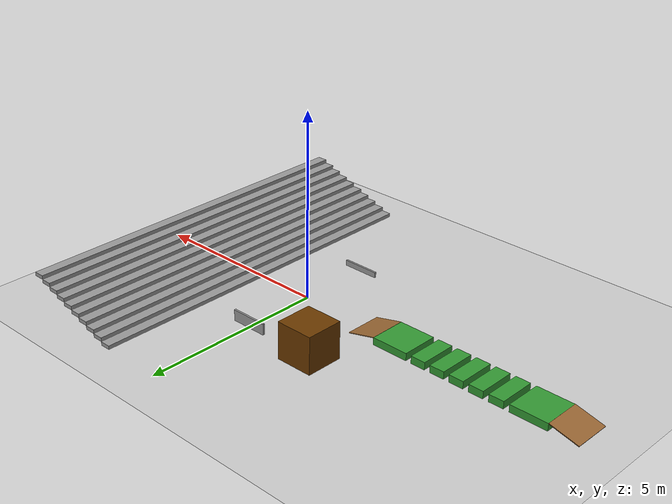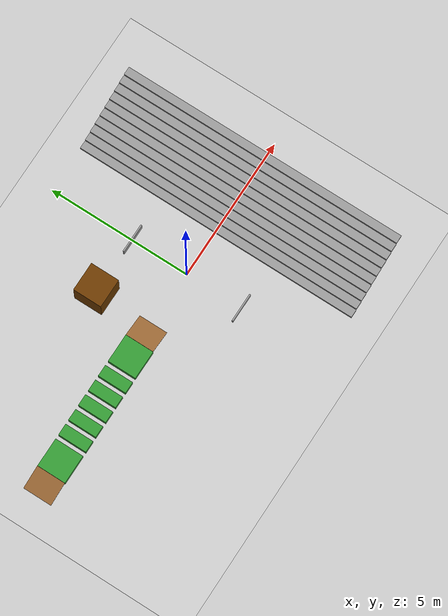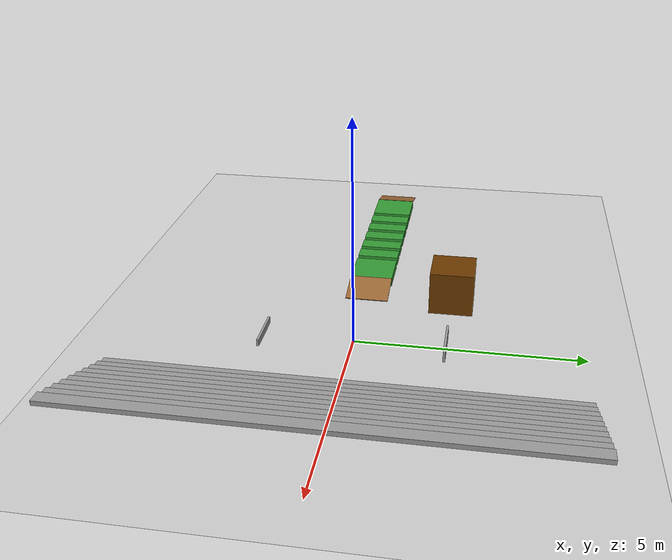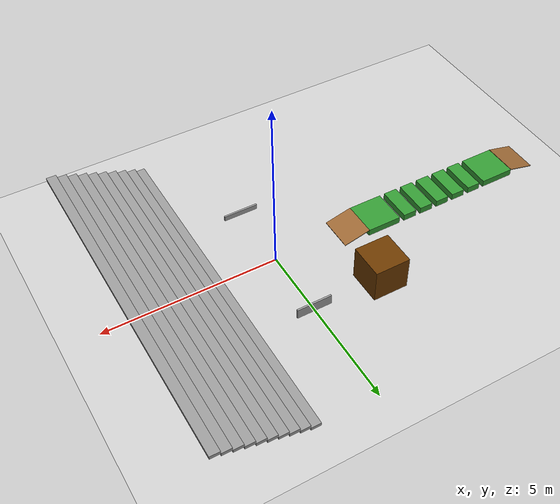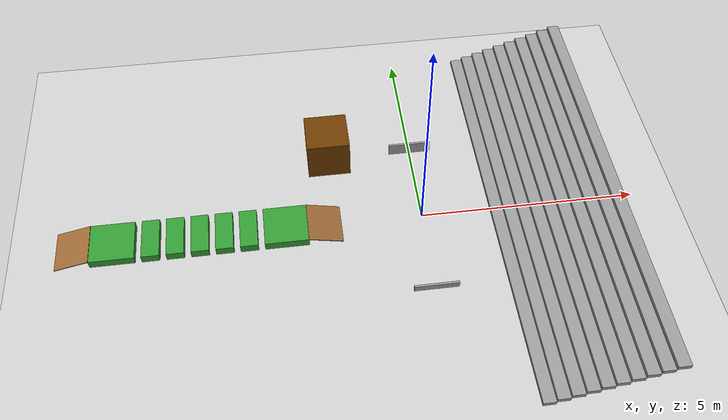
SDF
<?xml version="1.0"?>
<sdf version="1.5">
    <world name="default">

        <physics type="ode">
            <max_step_size>0.0005</max_step_size>
            <real_time_factor>1</real_time_factor>
            <real_time_update_rate>2000</real_time_update_rate>
            <gravity>0 0 -9.81</gravity>
            <ode>
                <solver>
                    <type>quick</type>
                    <iters>50</iters>
                    <sor>1.3</sor>
                </solver>
                <constraints>
                    <cfm>0.0</cfm>
                    <erp>0.2</erp>
                    <contact_max_correcting_vel>10.0</contact_max_correcting_vel>
                    <contact_surface_layer>0.001</contact_surface_layer>
                </constraints>
            </ode>
        </physics>

        <plugin name="gazebo_ros_state" filename="libgazebo_ros_state.so">
            <ros>
                <namespace>/gazebo</namespace>
            </ros>
            <update_rate>100.0</update_rate>
        </plugin>

        <scene>
            <sky>
                <clouds>
                    <speed>12</speed>
                </clouds>
            </sky>
        </scene>
        <!-- A global light source -->
        <include>
            <uri>model://sun</uri>
        </include>
        <!-- A ground plane -->
        <model name="ground_plane">
            <static>true</static>
            <link name="link">
                <collision name="collision">
                    <geometry>
                        <plane>
                            <normal>0 0 1</normal>
                            <size>100 100</size>
                        </plane>
                    </geometry>
                    <surface>
                        <friction>
                            <ode>
                                <mu>2.0</mu>      <!-- 静摩擦系数：增大摩擦 -->
                                <mu2>2.0</mu2>    <!-- 动摩擦系数：增大摩擦 -->
                                <fdir1>0 0 0</fdir1>
                                <slip1>0.0</slip1>
                                <slip2>0.0</slip2>
                            </ode>
                        </friction>
                        <contact>
                            <ode>
                                <kp>1000000.0</kp>  <!-- 地面刚度 -->
                                <kd>1.0</kd>        <!-- 地面阻尼 -->
                            </ode>
                        </contact>
                        <bounce>
                            <restitution_coefficient>0.0</restitution_coefficient>
                            <threshold>1e6</threshold>
                        </bounce>
                    </surface>
                </collision>
                <visual name="visual">
                    <geometry>
                        <plane>
                            <normal>0 0 1</normal>
                            <size>100 100</size>
                        </plane>
                    </geometry>
                    <material>
                        <script>
                            <uri>file://media/materials/scripts/gazebo.material</uri>
                            <name>Gazebo/Grey</name>
                        </script>
                    </material>
                </visual>
            </link>
        </model>
        <!-- environment blocks, obstacles or stairs -->
        <model name="static_environment">
            <static>true</static>
            <link name="static_box">
                <pose>-2 2 0.5 0 0 0</pose>
                <collision name="static_box_collision">
                    <geometry>
                        <box>
                            <size>1 1 1</size>
                        </box>
                    </geometry>
                    <surface>
                        <friction>
                            <ode>
                                <mu>2.0</mu>
                                <mu2>2.0</mu2>
                            </ode>
                        </friction>
                    </surface>
                </collision>
                <visual name="static_box_visual">
                    <geometry>
                        <box>
                            <size>1 1 1</size>
                        </box>
                    </geometry>
                    <material>
                        <ambient>0.2 0.2 0.2 1.0</ambient>
                        <diffuse>.421 0.225 0.0 1.0</diffuse>
                    </material>
                </visual>
            </link>

            <link name='wall'>
                <pose>0 2 0.15 0 0 0</pose>
                <collision name='wall_collision'>
                    <geometry>
                        <box>
                            <size>1.0 0.05 0.3</size>
                        </box>
                    </geometry>
                    <surface>
                        <friction>
                            <ode>
                                <mu>2.0</mu>
                                <mu2>2.0</mu2>
                            </ode>
                        </friction>
                    </surface>
                </collision>
                <visual name='wall_visual'>
                    <geometry>
                        <box>
                            <size>1.0 0.05 0.3</size>
                        </box>
                    </geometry>
                    <material>
                        <ambient>0.3 0.3 0.3 1.0</ambient>
                        <diffuse>0.6 0.6 0.6 1.0</diffuse>
                    </material>
                </visual>
            </link>

            <link name='wall_15cm'>
                <pose>0 -2 0.075 0 0 0</pose>
                <collision name='wall_15cm_collision'>
                    <geometry>
                        <box>
                            <size>1.0 0.05 0.15</size>
                        </box>
                    </geometry>
                    <surface>
                        <friction>
                            <ode>
                                <mu>2.0</mu>
                                <mu2>2.0</mu2>
                            </ode>
                        </friction>
                    </surface>
                </collision>
                <visual name='wall_15cm_visual'>
                    <geometry>
                        <box>
                            <size>1.0 0.05 0.15</size>
                        </box>
                    </geometry>
                    <material>
                        <ambient>0.3 0.3 0.3 1.0</ambient>
                        <diffuse>0.6 0.6 0.6 1.0</diffuse>
                    </material>
                </visual>
            </link>

            <link name='Stairs'>
                <pose>3 0 0 0 0 0</pose>
                <scale>1 1 1</scale>
                <visual name='Stairs_Visual_0'>
                    <pose>-1.26 -0 0.05 0 -0 1.5708</pose>
                    <geometry>
                        <box>
                            <size>10 0.28 0.10</size>
                        </box>
                    </geometry>
                    <material>
                        <script>
                            <uri>file://media/materials/scripts/gazebo.material</uri>
                            <name>Gazebo/Grey</name>
                        </script>
                        <ambient>1 1 1 1</ambient>
                    </material>
                    <meta>
                        <layer>0</layer>
                    </meta>
                </visual>
                <collision name='Stairs_Collision_0'>
                    <geometry>
                        <box>
                            <size>10 0.28 0.10</size>
                        </box>
                    </geometry>
                    <surface>
                        <friction>
                            <ode>
                                <mu>2.0</mu>
                                <mu2>2.0</mu2>
                            </ode>
                        </friction>
                    </surface>
                    <pose>-1.26 -0 0.05 0 -0 1.5708</pose>
                </collision>
                <visual name='Stairs_Visual_1'>
                    <pose>-0.98 -0 0.15 0 -0 1.5708</pose>
                    <geometry>
                        <box>
                            <size>10 0.28 0.10</size>
                        </box>
                    </geometry>
                    <material>
                        <script>
                            <uri>file://media/materials/scripts/gazebo.material</uri>
                            <name>Gazebo/Grey</name>
                        </script>
                        <ambient>1 1 1 1</ambient>
                    </material>
                    <meta>
                        <layer>0</layer>
                    </meta>
                </visual>
                <collision name='Stairs_Collision_1'>
                    <geometry>
                        <box>
                            <size>10 0.28 0.10</size>
                        </box>
                    </geometry>
                    <surface>
                        <friction>
                            <ode>
                                <mu>2.0</mu>
                                <mu2>2.0</mu2>
                            </ode>
                        </friction>
                    </surface>
                    <pose>-0.98 -0 0.15 0 -0 1.5708</pose>
                </collision>
                <visual name='Stairs_Visual_2'>
                    <pose>-0.7 -0 0.25 0 -0 1.5708</pose>
                    <geometry>
                        <box>
                            <size>10 0.28 0.10</size>
                        </box>
                    </geometry>
                    <material>
                        <script>
                            <uri>file://media/materials/scripts/gazebo.material</uri>
                            <name>Gazebo/Grey</name>
                        </script>
                        <ambient>1 1 1 1</ambient>
                    </material>
                    <meta>
                        <layer>0</layer>
                    </meta>
                </visual>
                <collision name='Stairs_Collision_2'>
                    <geometry>
                        <box>
                            <size>10 0.28 0.10</size>
                        </box>
                    </geometry>
                    <surface>
                        <friction>
                            <ode>
                                <mu>2.0</mu>
                                <mu2>2.0</mu2>
                            </ode>
                        </friction>
                    </surface>
                    <pose>-0.7 -0 0.25 0 -0 1.5708</pose>
                </collision>
                <visual name='Stairs_Visual_3'>
                    <pose>-0.42 -0 0.35 0 -0 1.5708</pose>
                    <geometry>
                        <box>
                            <size>10 0.28 0.10</size>
                        </box>
                    </geometry>
                    <material>
                        <script>
                            <uri>file://media/materials/scripts/gazebo.material</uri>
                            <name>Gazebo/Grey</name>
                        </script>
                        <ambient>1 1 1 1</ambient>
                    </material>
                    <meta>
                        <layer>0</layer>
                    </meta>
                </visual>
                <collision name='Stairs_Collision_3'>
                    <geometry>
                        <box>
                            <size>10 0.28 0.10</size>
                        </box>
                    </geometry>
                    <surface>
                        <friction>
                            <ode>
                                <mu>2.0</mu>
                                <mu2>2.0</mu2>
                            </ode>
                        </friction>
                    </surface>
                    <pose>-0.42 -0 0.35 0 -0 1.5708</pose>
                </collision>
                <visual name='Stairs_Visual_4'>
                    <pose>-0.14 -0 0.45 0 -0 1.5708</pose>
                    <geometry>
                        <box>
                            <size>10 0.28 0.10</size>
                        </box>
                    </geometry>
                    <material>
                        <script>
                            <uri>file://media/materials/scripts/gazebo.material</uri>
                            <name>Gazebo/Grey</name>
                        </script>
                        <ambient>1 1 1 1</ambient>
                    </material>
                    <meta>
                        <layer>0</layer>
                    </meta>
                </visual>
                <collision name='Stairs_Collision_4'>
                    <geometry>
                        <box>
                            <size>10 0.28 0.10</size>
                        </box>
                    </geometry>
                    <surface>
                        <friction>
                            <ode>
                                <mu>2.0</mu>
                                <mu2>2.0</mu2>
                            </ode>
                        </friction>
                    </surface>
                    <pose>-0.14 -0 0.45 0 -0 1.5708</pose>
                </collision>
                <visual name='Stairs_Visual_5'>
                    <pose>0.14 0 0.55 0 -0 1.5708</pose>
                    <geometry>
                        <box>
                            <size>10 0.28 0.10</size>
                        </box>
                    </geometry>
                    <material>
                        <script>
                            <uri>file://media/materials/scripts/gazebo.material</uri>
                            <name>Gazebo/Grey</name>
                        </script>
                        <ambient>1 1 1 1</ambient>
                    </material>
                    <meta>
                        <layer>0</layer>
                    </meta>
                </visual>
                <collision name='Stairs_Collision_5'>
                    <geometry>
                        <box>
                            <size>10 0.28 0.10</size>
                        </box>
                    </geometry>
                    <surface>
                        <friction>
                            <ode>
                                <mu>2.0</mu>
                                <mu2>2.0</mu2>
                            </ode>
                        </friction>
                    </surface>
                    <pose>0.14 0 0.55 0 -0 1.5708</pose>
                </collision>
                <visual name='Stairs_Visual_6'>
                    <pose>0.42 0 0.65 0 -0 1.5708</pose>
                    <geometry>
                        <box>
                            <size>10 0.28 0.10</size>
                        </box>
                    </geometry>
                    <material>
                        <script>
                            <uri>file://media/materials/scripts/gazebo.material</uri>
                            <name>Gazebo/Grey</name>
                        </script>
                        <ambient>1 1 1 1</ambient>
                    </material>
                    <meta>
                        <layer>0</layer>
                    </meta>
                </visual>
                <collision name='Stairs_Collision_6'>
                    <geometry>
                        <box>
                            <size>10 0.28 0.10</size>
                        </box>
                    </geometry>
                    <surface>
                        <friction>
                            <ode>
                                <mu>2.0</mu>
                                <mu2>2.0</mu2>
                            </ode>
                        </friction>
                    </surface>
                    <pose>0.42 0 0.65 0 -0 1.5708</pose>
                </collision>
                <visual name='Stairs_Visual_7'>
                    <pose>0.7 0 0.75 0 -0 1.5708</pose>
                    <geometry>
                        <box>
                            <size>10 0.28 0.10</size>
                        </box>
                    </geometry>
                    <material>
                        <script>
                            <uri>file://media/materials/scripts/gazebo.material</uri>
                            <name>Gazebo/Grey</name>
                        </script>
                        <ambient>1 1 1 1</ambient>
                    </material>
                    <meta>
                        <layer>0</layer>
                    </meta>
                </visual>
                <collision name='Stairs_Collision_7'>
                    <geometry>
                        <box>
                            <size>10 0.28 0.10</size>
                        </box>
                    </geometry>
                    <surface>
                        <friction>
                            <ode>
                                <mu>2.0</mu>
                                <mu2>2.0</mu2>
                            </ode>
                        </friction>
                    </surface>
                    <pose>0.7 0 0.75 0 -0 1.5708</pose>
                </collision>
                <visual name='Stairs_Visual_8'>
                    <pose>0.98 0 0.85 0 -0 1.5708</pose>
                    <geometry>
                        <box>
                            <size>10 0.28 0.10</size>
                        </box>
                    </geometry>
                    <material>
                        <script>
                            <uri>file://media/materials/scripts/gazebo.material</uri>
                            <name>Gazebo/Grey</name>
                        </script>
                        <ambient>1 1 1 1</ambient>
                    </material>
                    <meta>
                        <layer>0</layer>
                    </meta>
                </visual>
                <collision name='Stairs_Collision_8'>
                    <geometry>
                        <box>
                            <size>10 0.28 0.10</size>
                        </box>
                    </geometry>
                    <surface>
                        <friction>
                            <ode>
                                <mu>2.0</mu>
                                <mu2>2.0</mu2>
                            </ode>
                        </friction>
                    </surface>
                    <pose>0.98 0 0.85 0 -0 1.5708</pose>
                </collision>
                <visual name='Stairs_Visual_9'>
                    <pose>1.26 0 0.95 0 -0 1.5708</pose>
                    <geometry>
                        <box>
                            <size>10 0.28 0.10</size>
                        </box>
                    </geometry>
                    <material>
                        <script>
                            <uri>file://media/materials/scripts/gazebo.material</uri>
                            <name>Gazebo/Grey</name>
                        </script>
                        <ambient>1 1 1 1</ambient>
                    </material>
                    <meta>
                        <layer>0</layer>
                    </meta>
                </visual>
                <collision name='Stairs_Collision_9'>
                    <geometry>
                        <box>
                            <size>10 0.28 0.10</size>
                        </box>
                    </geometry>
                    <surface>
                        <friction>
                            <ode>
                                <mu>2.0</mu>
                                <mu2>2.0</mu2>
                            </ode>
                        </friction>
                    </surface>
                    <pose>1.26 0 0.95 0 -0 1.5708</pose>
                </collision>
            </link>
        </model>

        <!-- 小平台 ×7: 高200mm, 长1000mm(Y), 宽400mm(X), 边到边间距150mm -->
        <model name="small_platform_0">
            <static>true</static>
            <link name="platform_link_0">
                <pose>-3.15 0 0.1 0 0 1.5708</pose>
                <collision name="platform_collision_0">
                    <geometry><box><size>1.0 1.0 0.2</size></box></geometry>
                    <surface><friction><ode><mu>2.0</mu><mu2>2.0</mu2></ode></friction></surface>
                </collision>
                <visual name="platform_visual_0">
                    <geometry><box><size>1.0 1.0 0.2</size></box></geometry>
                    <material><ambient>0.3 0.3 0.3 1.0</ambient><diffuse>0.2 0.6 0.2 1.0</diffuse></material>
                </visual>
            </link>
        </model>
        <model name="small_platform_1">
            <static>true</static>
            <link name="platform_link_1">
                <pose>-4.00 0 0.1 0 0 1.5708</pose>
                <collision name="platform_collision_1">
                    <geometry><box><size>1.0 0.4 0.2</size></box></geometry>
                    <surface><friction><ode><mu>2.0</mu><mu2>2.0</mu2></ode></friction></surface>
                </collision>
                <visual name="platform_visual_1">
                    <geometry><box><size>1.0 0.4 0.2</size></box></geometry>
                    <material><ambient>0.3 0.3 0.3 1.0</ambient><diffuse>0.2 0.6 0.2 1.0</diffuse></material>
                </visual>
            </link>
        </model>
        <model name="small_platform_2">
            <static>true</static>
            <link name="platform_link_2">
                <pose>-4.55 0 0.1 0 0 1.5708</pose>
                <collision name="platform_collision_2">
                    <geometry><box><size>1.0 0.4 0.2</size></box></geometry>
                    <surface><friction><ode><mu>2.0</mu><mu2>2.0</mu2></ode></friction></surface>
                </collision>
                <visual name="platform_visual_2">
                    <geometry><box><size>1.0 0.4 0.2</size></box></geometry>
                    <material><ambient>0.3 0.3 0.3 1.0</ambient><diffuse>0.2 0.6 0.2 1.0</diffuse></material>
                </visual>
            </link>
        </model>
        <model name="small_platform_3">
            <static>true</static>
            <link name="platform_link_3">
                <pose>-5.10 0 0.1 0 0 1.5708</pose>
                <collision name="platform_collision_3">
                    <geometry><box><size>1.0 0.4 0.2</size></box></geometry>
                    <surface><friction><ode><mu>2.0</mu><mu2>2.0</mu2></ode></friction></surface>
                </collision>
                <visual name="platform_visual_3">
                    <geometry><box><size>1.0 0.4 0.2</size></box></geometry>
                    <material><ambient>0.3 0.3 0.3 1.0</ambient><diffuse>0.2 0.6 0.2 1.0</diffuse></material>
                </visual>
            </link>
        </model>
        <model name="small_platform_4">
            <static>true</static>
            <link name="platform_link_4">
                <pose>-5.65 0 0.1 0 0 1.5708</pose>
                <collision name="platform_collision_4">
                    <geometry><box><size>1.0 0.4 0.2</size></box></geometry>
                    <surface><friction><ode><mu>2.0</mu><mu2>2.0</mu2></ode></friction></surface>
                </collision>
                <visual name="platform_visual_4">
                    <geometry><box><size>1.0 0.4 0.2</size></box></geometry>
                    <material><ambient>0.3 0.3 0.3 1.0</ambient><diffuse>0.2 0.6 0.2 1.0</diffuse></material>
                </visual>
            </link>
        </model>
        <model name="small_platform_5">
            <static>true</static>
            <link name="platform_link_5">
                <pose>-6.20 0 0.1 0 0 1.5708</pose>
                <collision name="platform_collision_5">
                    <geometry><box><size>1.0 0.4 0.2</size></box></geometry>
                    <surface><friction><ode><mu>2.0</mu><mu2>2.0</mu2></ode></friction></surface>
                </collision>
                <visual name="platform_visual_5">
                    <geometry><box><size>1.0 0.4 0.2</size></box></geometry>
                    <material><ambient>0.3 0.3 0.3 1.0</ambient><diffuse>0.2 0.6 0.2 1.0</diffuse></material>
                </visual>
            </link>
        </model>
        <model name="small_platform_6">
            <static>true</static>
            <link name="platform_link_6">
                <pose>-7.05 0 0.1 0 0 1.5708</pose>
                <collision name="platform_collision_6">
                    <geometry><box><size>1.0 1.0 0.2</size></box></geometry>
                    <surface><friction><ode><mu>2.0</mu><mu2>2.0</mu2></ode></friction></surface>
                </collision>
                <visual name="platform_visual_6">
                    <geometry><box><size>1.0 1.0 0.2</size></box></geometry>
                    <material><ambient>0.3 0.3 0.3 1.0</ambient><diffuse>0.2 0.6 0.2 1.0</diffuse></material>
                </visual>
            </link>
        </model>

        <!-- 两端平台斜坡: 坡度14°, 长~0.8m, 宽1000mm -->
        <model name="ramp_0">
            <static>true</static>
            <link name="ramp_link_0">
                <pose>-2.27 0 0.099 0 0.2443 0</pose>
                <collision name="ramp_collision_0">
                    <geometry><box><size>0.8 1.0 0.02</size></box></geometry>
                    <surface><friction><ode><mu>2.0</mu><mu2>2.0</mu2></ode></friction></surface>
                </collision>
                <visual name="ramp_visual_0">
                    <geometry><box><size>0.8 1.0 0.02</size></box></geometry>
                    <material><ambient>0.3 0.3 0.3 1.0</ambient><diffuse>0.6 0.4 0.2 1.0</diffuse></material>
                </visual>
            </link>
        </model>
        <model name="ramp_6">
            <static>true</static>
            <link name="ramp_link_6">
                <pose>-7.94 0 0.099 0 0.2443 3.1416</pose>
                <collision name="ramp_collision_6">
                    <geometry><box><size>0.8 1.0 0.02</size></box></geometry>
                    <surface><friction><ode><mu>2.0</mu><mu2>2.0</mu2></ode></friction></surface>
                </collision>
                <visual name="ramp_visual_6">
                    <geometry><box><size>0.8 1.0 0.02</size></box></geometry>
                    <material><ambient>0.3 0.3 0.3 1.0</ambient><diffuse>0.6 0.4 0.2 1.0</diffuse></material>
                </visual>
            </link>
        </model>

    </world>
</sdf>
